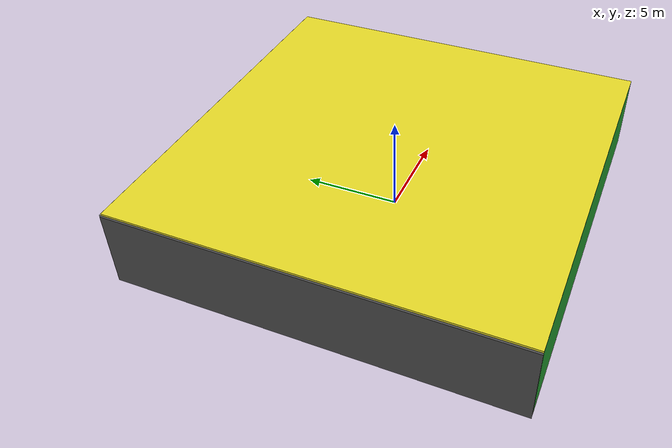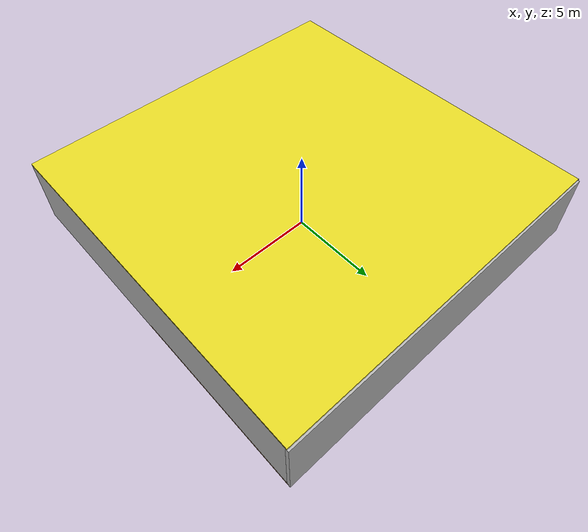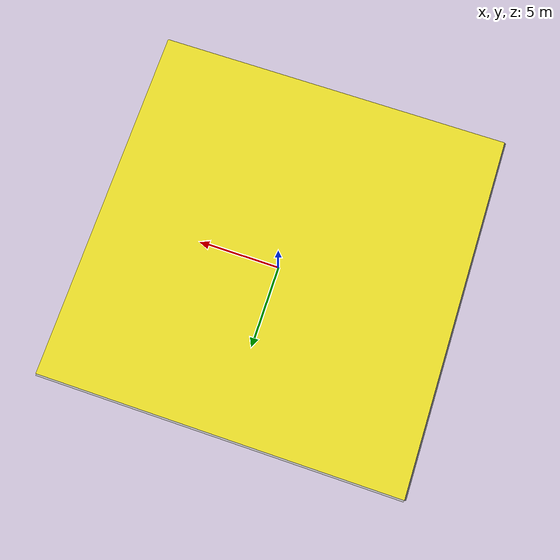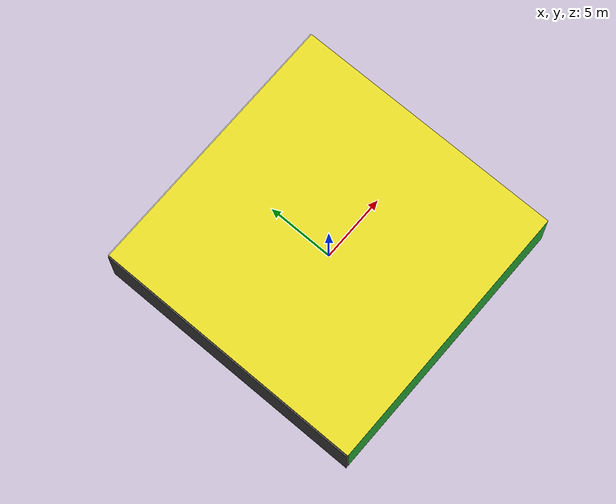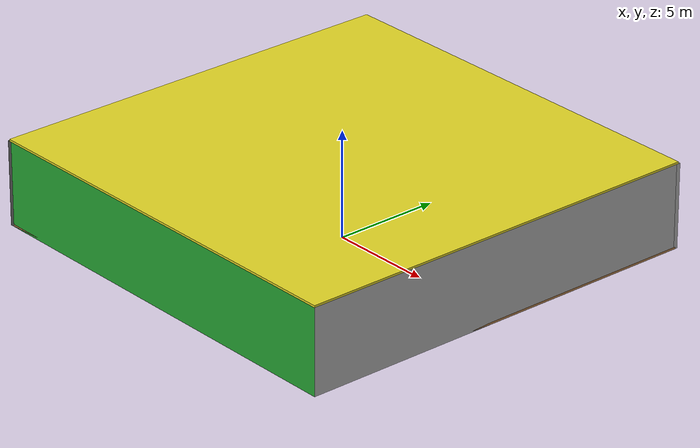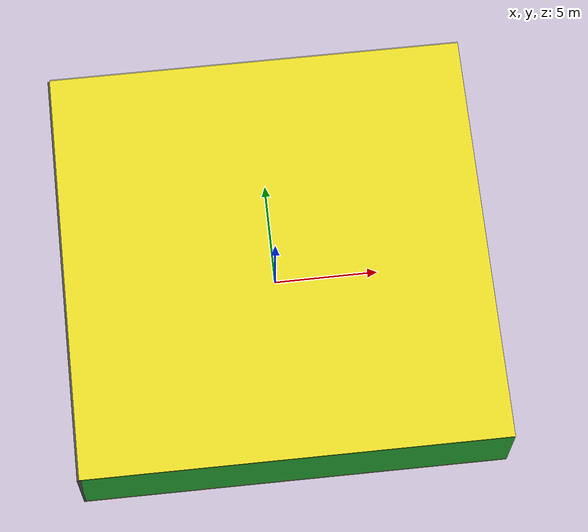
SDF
<sdf version="1.4">
 <world name="default">
  <physics type="ode">
   <max_step_size>0.001</max_step_size>
   <real_time_factor>1</real_time_factor>
   <real_time_update_rate>1000</real_time_update_rate>
   <gravity>0 0 -9.8</gravity>
  </physics>
  <scene><ambient>0.4 0.4 0.4 1</ambient><background>0.7 0.7 0.7 1</background><shadows>1</shadows></scene>
  <model name="Surrounding">
   <static>1</static>
   <link name="Ceiling">
    <collision name="Ceiling_Collision"><geometry><box><size>20 20 0.1</size></box></geometry></collision>
    <visual name="Ceiling_Visual">
     <geometry><box><size>20 20 0.1</size></box></geometry>
     <material>
      <script><uri>file://media/materials/scripts/gazebo.material</uri><name>Gazebo/YellowGlow</name></script>
     </material>
    </visual>
    <pose>0 0 4.05 0 0 0</pose>
   </link>
   <link name="Wall_South">
    <collision name="Wall_South_Collision">
     <geometry><box><size>20 0 4</size></box></geometry>
     <pose>0 0 2 0 -0 0</pose>
    </collision>
    <visual name="Wall_South_Visual">
     <pose>0 0 2 0 -0 0</pose>
     <geometry><box><size>20 0 4</size></box></geometry>
     <material>
      <script><uri>file://media/materials/scripts/gazebo.material</uri><name>Gazebo/GreenGlow</name></script>
     </material>
    </visual>
    <velocity_decay><linear>0</linear><angular>0</angular></velocity_decay>
    <pose>0 -10 0 0 -0 0</pose>
   </link>
   <link name="Wall_East">
    <collision name="Wall_21_Collision">
     <geometry><box><size>20 0 4</size></box></geometry>
     <pose>0 0 2 0 -0 0</pose>
    </collision>
    <visual name="Wall_21_Visual">
     <pose>0 0 2 0 -0 0</pose>
     <geometry><box><size>20 0 4</size></box></geometry>
     <material>
      <script><uri>file://media/materials/scripts/gazebo.material</uri><name>Gazebo/PioneerBody</name></script>
     </material>
    </visual>
    <velocity_decay><linear>0</linear><angular>0</angular></velocity_decay>
    <pose>10 0 0 0 -0 1.5708</pose>
   </link>
   <link name="Wall_North">
    <collision name="Wall_22_Collision">
     <geometry><box><size>20 0.2 4</size></box></geometry>
     <pose>0 0 2 0 -0 0</pose>
    </collision>
    <visual name="Wall_22_Visual">
     <pose>0 0 2 0 -0 0</pose>
     <geometry><box><size>20 0.2 4</size></box></geometry>
     <material>
      <script><uri>file://media/materials/scripts/gazebo.material</uri><name>Gazebo/Pioneer2Body</name></script>
     </material>
    </visual>
    <velocity_decay><linear>0</linear><angular>0</angular></velocity_decay>
    <pose>0 10 0 0 -0 0</pose>
   </link>
   <link name="Wall_West">
    <collision name="Wall_23_Collision">
     <geometry><box><size>20 0.2 4</size></box></geometry>
     <pose>0 0 2 0 -0 0</pose>
    </collision>
    <visual name="Wall_23_Visual">
     <pose>0 0 2 0 -0 0</pose>
     <geometry><box><size>20 0.2 4</size></box></geometry>
     <material>
      <script><uri>file://media/materials/scripts/gazebo.material</uri><name>Gazebo/DarkGrey</name></script>
     </material>
    </visual>
    <velocity_decay><linear>0</linear><angular>0</angular></velocity_decay>
    <pose>-10 0 0 0 0 -1.5708</pose>
   </link>
   <link name="Ground_link">
    <collision name="collision">
     <pose>0 0 .05 0 -0 0</pose>
     <geometry><box><size>20 20 0.1</size></box></geometry>
    </collision>
    <visual name="visual">
     <pose>0 0 .05 0 -0 0</pose>
     <geometry><box><size>20 20 0.1</size></box></geometry>
     <material>
      <script><uri>file://media/materials/scripts/gazebo.material</uri><name>Gazebo/WoodFloor</name></script>
     </material>
    </visual>
   </link>
   <static>1</static>
  </model>
  <spherical_coordinates>
   <surface_model>EARTH_WGS84</surface_model>
   <latitude_deg>0</latitude_deg>
   <longitude_deg>0</longitude_deg>
   <elevation>0</elevation>
   <heading_deg>0</heading_deg>
  </spherical_coordinates>
  <light name="lightball_0" type="diffuse">
   <diffuse>0.8 0.8 0.8 1</diffuse>
   <specular>0.2 0.2 0.2 1</specular>
   <attenuation>
    <range>100</range>
    <constant>0.7</constant>
    <linear>0.01</linear>
    <quadratic>0.001</quadratic>
   </attenuation>
   <direction>-0.5 0.1 -0.9</direction>
   <pose>-6.58074925193 -8.55716059182 2.36110728683 0 0 0</pose>
  </light>
  <light name="lightball_1" type="diffuse">
   <diffuse>0.8 0.8 0.8 1</diffuse>
   <specular>0.2 0.2 0.2 1</specular>
   <attenuation>
    <range>100</range>
    <constant>0.7</constant>
    <linear>0.01</linear>
    <quadratic>0.001</quadratic>
   </attenuation>
   <direction>-0.5 0.1 -0.9</direction>
   <pose>-4.68848090404 0.17765828866 0.807570756113 0 0 0</pose>
  </light>
  <light name="lightball_2" type="diffuse">
   <diffuse>0.8 0.8 0.8 1</diffuse>
   <specular>0.2 0.2 0.2 1</specular>
   <attenuation>
    <range>100</range>
    <constant>0.7</constant>
    <linear>0.01</linear>
    <quadratic>0.001</quadratic>
   </attenuation>
   <direction>-0.5 0.1 -0.9</direction>
   <pose>-8.93923414909 -7.04636437482 1.2609478324 0 0 0</pose>
  </light>
  <light name="lightball_3" type="diffuse">
   <diffuse>0.8 0.8 0.8 1</diffuse>
   <specular>0.2 0.2 0.2 1</specular>
   <attenuation>
    <range>100</range>
    <constant>0.7</constant>
    <linear>0.01</linear>
    <quadratic>0.001</quadratic>
   </attenuation>
   <direction>-0.5 0.1 -0.9</direction>
   <pose>8.85068441598 6.31205484503 1.55049018434 0 0 0</pose>
  </light>
  <light name="lightball_4" type="diffuse">
   <diffuse>0.8 0.8 0.8 1</diffuse>
   <specular>0.2 0.2 0.2 1</specular>
   <attenuation>
    <range>100</range>
    <constant>0.7</constant>
    <linear>0.01</linear>
    <quadratic>0.001</quadratic>
   </attenuation>
   <direction>-0.5 0.1 -0.9</direction>
   <pose>-0.04209181347 9.68236868563 1.52944512961 0 0 0</pose>
  </light>
  <light name="lightball_5" type="diffuse">
   <diffuse>0.8 0.8 0.8 1</diffuse>
   <specular>0.2 0.2 0.2 1</specular>
   <attenuation>
    <range>100</range>
    <constant>0.7</constant>
    <linear>0.01</linear>
    <quadratic>0.001</quadratic>
   </attenuation>
   <direction>-0.5 0.1 -0.9</direction>
   <pose>-1.75825251986 0.677819493993 1.53773730865 0 0 0</pose>
  </light>
  <light name="lightball_6" type="diffuse">
   <diffuse>0.8 0.8 0.8 1</diffuse>
   <specular>0.2 0.2 0.2 1</specular>
   <attenuation>
    <range>100</range>
    <constant>0.7</constant>
    <linear>0.01</linear>
    <quadratic>0.001</quadratic>
   </attenuation>
   <direction>-0.5 0.1 -0.9</direction>
   <pose>-7.32190334278 -3.12777574039 2.26136078049 0 0 0</pose>
  </light>
  <light name="lightball_7" type="diffuse">
   <diffuse>0.8 0.8 0.8 1</diffuse>
   <specular>0.2 0.2 0.2 1</specular>
   <attenuation>
    <range>100</range>
    <constant>0.7</constant>
    <linear>0.01</linear>
    <quadratic>0.001</quadratic>
   </attenuation>
   <direction>-0.5 0.1 -0.9</direction>
   <pose>-6.12804421445 -4.94851890259 3.49313725644 0 0 0</pose>
  </light>
  <include>
   <uri>model://robocup_3Dsim_goal</uri>
   <pose>-7.58166428704 -1.9734758977 0 0 0 2.60169183105</pose>
  </include>
  <include>
   <uri>model://robocup_3Dsim_goal</uri>
   <pose>-7.55030983187 4.67385767526 0 0 0 0.376251768293</pose>
  </include>
  <include><uri>model://cabinet</uri><pose>-1.17163813108 2.04164869626 0 0 0 0.850907527514</pose></include>
  <include>
   <uri>model://textured_shapes</uri>
   <pose>1.33321953337 -4.12431069362 0 0 0 1.98276808819</pose>
  </include>
  <include><uri>model://cabinet</uri><pose>1.32584807204 1.00593682333 0 0 0 0.32608435537</pose></include>
  <include><uri>model://cabinet</uri><pose>2.21968183353 4.02960315553 0 0 0 0.362319886705</pose></include>
  <include><uri>model://cabinet</uri><pose>4.16967823892 7.74676757309 0 0 0 1.55014221404</pose></include>
 </world>
</sdf>

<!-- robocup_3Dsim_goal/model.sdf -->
<sdf version="1.5">
  <model name="robocup_3d_goal">
    <static>true</static>
    <link name="left_post">
      <pose>0 1.05 0.45 0 0 0</pose>
      <collision name="collision">
        <geometry>
          <cylinder>
            <radius>0.05</radius>
            <length>0.9</length>
          </cylinder>
        </geometry>
      </collision>
      <visual name="visual">
        <geometry>
          <cylinder>
            <radius>0.05</radius>
            <length>0.9</length>
          </cylinder>
        </geometry>
        <material>
          <script>
            <uri>file://media/materials/scripts/gazebo.material</uri>
            <name>Gazebo/ZincYellow</name>
          </script>
        </material>
      </visual>
    </link>
    <link name="left_support_horiz_lower">
      <pose>0.30 1.05 0.01 0 0 0</pose>
      <collision name="collision">
        <geometry>
          <box>
            <size>0.50 0.02 0.02</size>
          </box>
        </geometry>
      </collision>
      <visual name="visual">
        <geometry>
          <box>
            <size>0.50 0.02 0.02</size>
          </box>
        </geometry>
        <material>
          <script>
            <uri>file://media/materials/scripts/gazebo.material</uri>
            <name>Gazebo/White</name>
          </script>
        </material>
      </visual>
    </link>
    <link name="left_support_horiz_upper">
      <pose>0.30 1.05 0.79 0 0 0</pose>
      <collision name="collision">
        <geometry>
          <box>
            <size>0.50 0.02 0.02</size>
          </box>
        </geometry>
      </collision>
      <visual name="visual">
        <geometry>
          <box>
            <size>0.50 0.02 0.02</size>
          </box>
        </geometry>
        <material>
          <script>
            <uri>file://media/materials/scripts/gazebo.material</uri>
            <name>Gazebo/White</name>
          </script>
        </material>
      </visual>
    </link>
    <link name="left_support_vertical">
      <pose>0.56 1.05 0.4 0 1.5708 0</pose>
      <collision name="collision">
        <geometry>
          <box>
            <size>0.80 0.02 0.02</size>
          </box>
        </geometry>
      </collision>
      <visual name="visual">
        <geometry>
          <box>
            <size>0.80 0.02 0.02</size>
          </box>
        </geometry>
        <material>
          <script>
            <uri>file://media/materials/scripts/gazebo.material</uri>
            <name>Gazebo/White</name>
          </script>
        </material>
      </visual>
    </link>
    <link name="right_support_horiz_lower">
      <pose>0.30 -1.05 0.01 0 0 0</pose>
      <collision name="collision">
        <geometry>
          <box>
            <size>0.50 0.02 0.02</size>
          </box>
        </geometry>
      </collision>
      <visual name="visual">
        <geometry>
          <box>
            <size>0.50 0.02 0.02</size>
          </box>
        </geometry>
        <material>
          <script>
            <uri>file://media/materials/scripts/gazebo.material</uri>
            <name>Gazebo/White</name>
          </script>
        </material>
      </visual>
    </link>
    <link name="right_support_horiz_upper">
      <pose>0.30 -1.05 0.79 0 0 0</pose>
      <collision name="collision">
        <geometry>
          <box>
            <size>0.50 0.02 0.02</size>
          </box>
        </geometry>
      </collision>
      <visual name="visual">
        <geometry>
          <box>
            <size>0.50 0.02 0.02</size>
          </box>
        </geometry>
        <material>
          <script>
            <uri>file://media/materials/scripts/gazebo.material</uri>
            <name>Gazebo/White</name>
          </script>
        </material>
      </visual>
    </link>
    <link name="right_support_vertical">
      <pose>0.56 -1.05 0.4 0 1.5708 0</pose>
      <collision name="collision">
        <geometry>
          <box>
            <size>0.80 0.02 0.02</size>
          </box>
        </geometry>
      </collision>
      <visual name="visual">
        <geometry>
          <box>
            <size>0.80 0.02 0.02</size>
          </box>
        </geometry>
        <material>
          <script>
            <uri>file://media/materials/scripts/gazebo.material</uri>
            <name>Gazebo/White</name>
          </script>
        </material>
      </visual>
    </link>
    <link name="center_support_horiz_lower">
      <pose>0.56 0 0.01 0 1.5708 0</pose>
      <collision name="collision">
        <geometry>
          <box>
            <size>0.02 2.08 0.02</size>
          </box>
        </geometry>
      </collision>
      <visual name="visual">
        <geometry>
          <box>
            <size>0.02 2.08 0.02</size>
          </box>
        </geometry>
        <material>
          <script>
            <uri>file://media/materials/scripts/gazebo.material</uri>
            <name>Gazebo/White</name>
          </script>
        </material>
      </visual>
    </link>
    <link name="center_support_horiz_upper">
      <pose>0.56 0 0.79 0 1.5708 0</pose>
      <collision name="collision">
        <geometry>
          <box>
            <size>0.02 2.08 0.02</size>
          </box>
        </geometry>
      </collision>
      <visual name="visual">
        <geometry>
          <box>
            <size>0.02 2.08 0.02</size>
          </box>
        </geometry>
        <material>
          <script>
            <uri>file://media/materials/scripts/gazebo.material</uri>
            <name>Gazebo/White</name>
          </script>
        </material>
      </visual>
    </link>
    <link name="right_post">
      <pose>0 -1.05 0.45 0 0 0</pose>
      <collision name="collision">
        <geometry>
          <cylinder>
            <radius>0.05</radius>
            <length>0.9</length>
          </cylinder>
        </geometry>
      </collision>
      <visual name="visual">
        <geometry>
          <cylinder>
            <radius>0.05</radius>
            <length>0.9</length>
          </cylinder>
        </geometry>
        <material>
          <script>
            <uri>file://media/materials/scripts/gazebo.material</uri>
            <name>Gazebo/ZincYellow</name>
          </script>
        </material>
      </visual>
    </link>
    <link name="crossbar">
      <pose>0 0 0.85 1.57 1.57 0</pose>
      <collision name="collision">
        <geometry>
          <cylinder>
            <radius>0.05</radius>
            <length>2.0</length>
          </cylinder>
        </geometry>
      </collision>
      <visual name="visual">
        <geometry>
          <cylinder>
            <radius>0.05</radius>
            <length>2.0</length>
          </cylinder>
        </geometry>
        <material>
          <script>
            <uri>file://media/materials/scripts/gazebo.material</uri>
            <name>Gazebo/ZincYellow</name>
          </script>
        </material>
      </visual>
    </link>
    <link name="center_net">
      <pose>0.56 0 0.40 0 0 0</pose>
      <collision name="collision">
        <geometry>
          <box>
            <size>0.01 2.1 0.80</size>
          </box>
        </geometry>
      </collision>
      <visual name="visual">
        <geometry>
          <box>
            <size>0.01 2.1 0.80</size>
          </box>
        </geometry>
        <material>
          <script>
            <uri>model://../model_source/models/robocup09_spl_field/materials/scripts/</uri>
            <uri>model://../model_source/models/robocup09_spl_field/materials/textures/</uri>
            <name>RoboCup/Net</name>
          </script>
        </material>
      </visual>
    </link>
    <link name="left_net">
      <pose>0.30 1.05 0.40 0 0 0</pose>
      <collision name="collision">
        <geometry>
          <box>
            <size>0.50 0.01 0.76</size>
          </box>
        </geometry>
      </collision>
      <visual name="visual">
        <geometry>
          <box>
            <size>0.50 0.01 0.76</size>
          </box>
        </geometry>
        <material>
          <script>
            <uri>model://../model_source/models/robocup09_spl_field/materials/scripts/</uri>
            <uri>model://../model_source/models/robocup09_spl_field/materials/textures/</uri>
            <name>RoboCup/Net</name>
          </script>
        </material>
      </visual>
    </link>
    <link name="right_net">
      <pose>0.30 -1.05 0.40 0 0 0</pose>
      <collision name="collision">
        <geometry>
          <box>
            <size>0.50 0.01 0.76</size>
          </box>
        </geometry>
      </collision>
      <visual name="visual">
        <geometry>
          <box>
            <size>0.50 0.01 0.76</size>
          </box>
        </geometry>
        <material>
          <script>
            <uri>model://../model_source/models/robocup09_spl_field/materials/scripts/</uri>
            <uri>model://../model_source/models/robocup09_spl_field/materials/textures/</uri>
            <name>RoboCup/Net</name>
          </script>
        </material>
      </visual>
    </link>
  </model>
</sdf>

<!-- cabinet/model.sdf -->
<sdf version="1.5">
  <model name="cabinet">
    <static>true</static>
    <link name="cabinet_bottom_plate">
      <inertial>
        <pose>0 0 -1 0 0 0</pose>
        <inertia>
          <ixx>2.050000</ixx>
          <ixy>0</ixy>
          <ixz>0</ixz>
          <iyy>2.050000</iyy>
          <iyz>0</iyz>
          <izz>2.050000</izz>
        </inertia>
        <mass>25.000000</mass>
      </inertial>
      <collision name="cabinet_bottom_plate_geom">
        <pose>0 0 0.010000 0 0 0</pose>
        <geometry>
          <box>
            <size>0.450000 0.450000 0.020000</size>
          </box>
        </geometry>
      </collision>
      <visual name="cabinet_bottom_plate_geom_visual">
        <pose>0 0 0.010000 0 0 0</pose>
        <geometry>
          <box>
            <size>0.450000 0.450000 0.020000</size>
          </box>
        </geometry>
        <material>
          <script>
            <uri>model://media/materials/scripts/gazebo.material</uri>
            <name>Gazebo/Wood</name>
          </script>
        </material>
      </visual>
      <collision name="cabinet_bottom_plate_geom_cabinet_back_plate">
        <pose>0.235000 0 0.510000 0 0 0</pose>
        <geometry>
          <box>
            <size>0.020000 0.450000 1.020000</size>
          </box>
        </geometry>
      </collision>
      <visual name="cabinet_bottom_plate_geom_cabinet_back_plate_visual">
        <pose>0.235000 0 0.510000 0 0 0</pose>
        <geometry>
          <box>
            <size>0.020000 0.450000 1.020000</size>
          </box>
        </geometry>
        <material>
          <script>
            <uri>model://media/materials/scripts/gazebo.material</uri>
            <name>Gazebo/Wood</name>
          </script>
        </material>
      </visual>
      <collision name="cabinet_bottom_plate_geom_cabinet_left_plate">
        <pose>0 0.235000 0.510000 0 0 0</pose>
        <geometry>
          <box>
            <size>0.450000 0.020000 1.020000</size>
          </box>
        </geometry>
      </collision>
      <visual name="cabinet_bottom_plate_geom_cabinet_left_plate_visual">
        <pose>0 0.235000 0.510000 0 0 0</pose>
        <geometry>
          <box>
            <size>0.450000 0.020000 1.020000</size>
          </box>
        </geometry>
        <material>
          <script>
            <uri>model://media/materials/scripts/gazebo.material</uri>
            <name>Gazebo/Wood</name>
          </script>
        </material>
      </visual>
      <collision name="cabinet_bottom_plate_geom_cabinet_middle_plate">
        <pose>0 0 0.510000 0 0 0</pose>
        <geometry>
          <box>
            <size>0.450000 0.450000 0.020000</size>
          </box>
        </geometry>
      </collision>
      <visual name="cabinet_bottom_plate_geom_cabinet_middle_plate_visual">
        <pose>0 0 0.510000 0 0 0</pose>
        <geometry>
          <box>
            <size>0.450000 0.450000 0.020000</size>
          </box>
        </geometry>
        <material>
          <script>
            <uri>model://media/materials/scripts/gazebo.material</uri>
            <name>Gazebo/Wood</name>
          </script>
        </material>
      </visual>
      <collision name="cabinet_bottom_plate_geom_cabinet_right_plate">
        <pose>0 -0.235000 0.510000 0 0 0</pose>
        <geometry>
          <box>
            <size>0.450000 0.020000 1.020000</size>
          </box>
        </geometry>
      </collision>
      <visual name="cabinet_bottom_plate_geom_cabinet_right_plate_visual">
        <pose>0 -0.235000 0.510000 0 0 0</pose>
        <geometry>
          <box>
            <size>0.450000 0.020000 1.020000</size>
          </box>
        </geometry>
        <material>
          <script>
            <uri>model://media/materials/scripts/gazebo.material</uri>
            <name>Gazebo/Wood</name>
          </script>
        </material>
      </visual>
      <collision name="cabinet_bottom_plate_geom_cabinet_top_plate">
        <pose>0 0 1.010000 0 0 0</pose>
        <geometry>
          <box>
            <size>0.450000 0.450000 0.020000</size>
          </box>
        </geometry>
      </collision>
      <visual name="cabinet_bottom_plate_geom_cabinet_top_plate_visual">
        <pose>0 0 1.010000 0 0 0</pose>
        <geometry>
          <box>
            <size>0.450000 0.450000 0.020000</size>
          </box>
        </geometry>
        <material>
          <script>
            <uri>model://media/materials/scripts/gazebo.material</uri>
            <name>Gazebo/Wood</name>
          </script>
        </material>
      </visual>
    </link>
  </model>
</sdf>

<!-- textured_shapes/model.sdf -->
<sdf version="1.6">
  <model name="textured_shapes">
    <pose>0 0 0.5 0 0 0</pose>
    <link name="box">
      <pose>0 -1.5 0 0 0 0</pose>
      <collision name="collision">
        <geometry>
          <box>
            <size>1 1 1</size>
          </box>
        </geometry>
      </collision>
      <visual name="visual">
        <geometry>
          <box>
            <size>1 1 1</size>
          </box>
        </geometry>
        <material>
          <script>
            <uri>model://../model_source/models/textured_shapes/materials/scripts</uri>
            <uri>model://../model_source/models/textured_shapes/materials/textures</uri>
            <name>TexturedShape/Squares</name>
          </script>
        </material>
      </visual>
    </link>
    <link name="sphere">
      <collision name="collision">
        <geometry>
          <sphere>
            <radius>0.5</radius>
          </sphere>
        </geometry>
      </collision>
      <visual name="visual">
        <geometry>
          <sphere>
            <radius>0.5</radius>
          </sphere>
        </geometry>
        <material>
          <script>
            <uri>model://../model_source/models/textured_shapes/materials/scripts</uri>
            <uri>model://../model_source/models/textured_shapes/materials/textures</uri>
            <name>TexturedShape/Squares</name>
          </script>
        </material>
      </visual>
    </link>
    <link name="cylinder">
      <pose>0 1.5 0 0 0 0</pose>
      <collision name="collision">
        <geometry>
          <cylinder>
            <radius>0.5</radius>
            <length>1</length>
          </cylinder>
        </geometry>
      </collision>
      <visual name="visual">
        <geometry>
          <cylinder>
            <radius>0.5</radius>
            <length>1</length>
          </cylinder>
        </geometry>
        <material>
          <script>
            <uri>model://../model_source/models/textured_shapes/materials/scripts</uri>
            <uri>model://../model_source/models/textured_shapes/materials/textures</uri>
            <name>TexturedShape/Squares</name>
          </script>
        </material>
      </visual>
    </link>
  </model>
</sdf>
